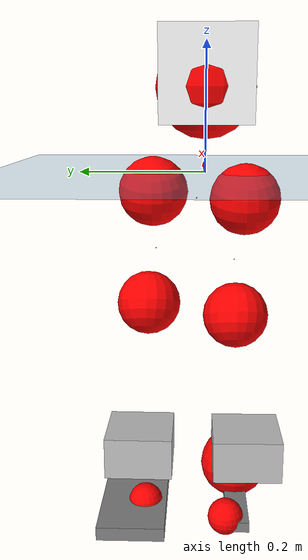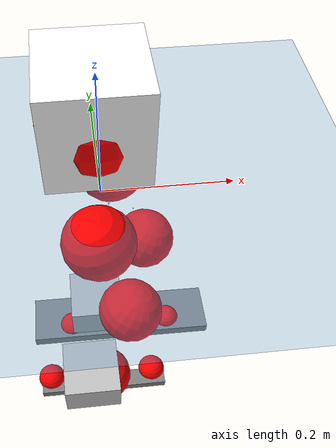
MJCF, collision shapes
<mujoco model="pi_12dof_release_v1">
  <compiler angle="radian" assetdir="assets" balanceinertia="true" inertiafromgeom="false"/>

  <option timestep="0.005" density="1.2" viscosity="2e-05"/>

  <size nkey="1"/>

  <visual>
    <quality shadowsize="8192"/>
    <map shadowclip="0.5"/>
  </visual>

  <default>
    <default class="/">
      <joint armature="0.01" damping="0.01" frictionloss="0.01"/>
      <geom contype="0" conaffinity="0" group="1" solref="-1000 -80"/>
      <site size="0.01 0.005 0.005" group="5"/>
      <general forcelimited="true" biastype="affine" gainprm="20" biasprm="0 -20 -0.5"/>
      <default class="foot">
        <geom size="0.0845 0.036 0.005" type="box" condim="6" group="4" priority="1" friction="0.9 0.2 0.2" solimp="0.015 1 0.005"/>
      </default>
      <default class="reward_collision_sphere">
        <geom group="5" rgba="1 0 0 1"/>
      </default>
    </default>
  </default>

  <asset>
    <texture type="skybox" colorspace="auto" name="//unnamed_texture_0" builtin="gradient" rgb1="0.95 0.95 0.95" rgb2="0.95 0.95 0.95" width="100" height="600"/>
    <texture type="2d" colorspace="auto" name="texplane" builtin="checker" rgb1="0.345 0.575 0.748" rgb2="0.345 0.575 0.748" markrgb="1 1 1" width="512" height="512"/>
    <material name="MatPlane" class="/" texture="texplane" texuniform="true" texrepeat="2 2" specular="0.9"/>
    <mesh name="baselink_1" class="/" file="baselink_1.STL"/>
    <mesh name="r_hip_pitch_link" class="/" file="r_hip_pitch_link.STL"/>
    <mesh name="r_hip_roll_link" class="/" file="r_hip_roll_link.STL"/>
    <mesh name="r_thigh_link" class="/" file="r_thigh_link.STL"/>
    <mesh name="r_calf_link" class="/" file="r_calf_link.STL"/>
    <mesh name="r_ankle_pitch_link" class="/" file="r_ankle_pitch_link.STL"/>
    <mesh name="r_ankle_roll_link" class="/" file="r_ankle_roll_link.STL"/>
    <mesh name="l_hip_pitch_link" class="/" file="l_hip_pitch_link.STL"/>
    <mesh name="l_hip_roll_link" class="/" file="l_hip_roll_link.STL"/>
    <mesh name="l_thigh_link" class="/" file="l_thigh_link.STL"/>
    <mesh name="l_calf_link" class="/" file="l_calf_link.STL"/>
    <mesh name="l_ankle_pitch_link" class="/" file="l_ankle_pitch_link.STL"/>
    <mesh name="l_ankle_roll_link" class="/" file="l_ankle_roll_link.STL"/>
  </asset>

  <worldbody>
    <geom name="floor" class="/" size="100 100 0.125" type="plane" group="0" material="MatPlane"/>
    <light name="toplight_shadow" class="/" pos="0 0 5" dir="0.0990148 0.0990148 -0.990148" type="directional" ambient="0.04 0.04 0.04" diffuse="0.55 0.55 0.55" specular="0.12 0.12 0.12"/>
    <light name="toplight_fill" class="/" pos="0 0 5" dir="0.0990148 0.0990148 -0.990148" type="directional" castshadow="false" ambient="0.04 0.04 0.04" diffuse="0.3 0.3 0.3" specular="0.08 0.08 0.08"/>
    <body name="trunk" pos="-0.00345919 8.86079e-05 0.0119444" quat="0.999998 -0.000994603 -0.00163821 -0.000322904">
      <inertial pos="0.017007 0.0146534 0.0591558" quat="0.721408 0.00608814 0.0166203 0.692284" mass="6.06075" diaginertia="0.0811052 0.00531055 0.0478964"/>
      <joint name="//unnamed_joint_0" type="free"/>
      <geom name="//unnamed_geom_1" class="/" type="mesh" density="0" rgba="1 1 1 1" mesh="baselink_1"/>
      <geom name="//unnamed_geom_2" class="/" size="0.0708399 0.0708399 0.0708399" pos="0 0 0.134628" type="box" rgba="1 1 1 1"/>
      <geom name="//unnamed_geom_3" class="reward_collision_sphere" size="0.0779239" pos="0 0 0.117799"/>
      <site name="imu" class="/" pos="0.0840232 0.0219812 -0.073084" size="0.014168"/>
      <camera name="track" class="/" pos="0 -1.87742 0" quat="0.707107 0.707107 0 0" mode="trackcom"/>
      <camera name="ego_camera" class="/" pos="0.122163 0 0.302913" quat="-0.5 -0.5 0.5 0.5"/>
      <body name="r_hip_pitch_link" pos="-0.0044369 -0.0139394 -0.0536915" quat="0.992572 0.00269548 -0.121605 -0.00226461">
        <inertial pos="-0.013396 -0.0423778 0.00242522" quat="-0.0354399 0.729502 -0.0641077 0.680045" mass="1.28784" diaginertia="0.00152961 7.4734e-05 0.00104837"/>
        <joint name="r_hip_pitch_joint" class="/" pos="0 0 0" axis="0.0842236 -0.996296 0.0173504" range="-1.74225 1.56237" armature="0.0207935" damping="0.09947" frictionloss="0.0195485"/>
        <geom name="//unnamed_geom_4" class="/" type="mesh" density="0" rgba="0.75294 0.75294 0.75294 1" mesh="r_hip_pitch_link"/>
        <geom name="//unnamed_geom_5" class="/" size="0.000708399 0.000708399 0.000708399" type="box" rgba="0.75294 0.75294 0.75294 1"/>
        <body name="r_hip_roll_link" pos="-0.000478367 -0.050103 0.000260701" quat="0.999999 0.000193613 -0.00157133 8.23397e-05">
          <inertial pos="-0.0114361 -0.00110325 -0.117496" quat="0.709811 -0.110782 -0.0787425 0.691155" mass="0.919219" diaginertia="0.00439126 0.000195977 0.0017747"/>
          <joint name="r_hip_roll_joint" class="/" pos="0 0 0" axis="-0.996555 -0.082694 0.00638167" stiffness="0.0284305" range="0.179685 0.34038" armature="0.0205655" damping="0" frictionloss="0.00532036"/>
          <geom name="//unnamed_geom_6" class="/" type="mesh" density="0" rgba="0.75294 0.75294 0.75294 1" mesh="r_hip_roll_link"/>
          <geom name="//unnamed_geom_7" class="/" size="0.000708399 0.000708399 0.000708399" type="box" rgba="0.75294 0.75294 0.75294 1"/>
          <geom name="//unnamed_geom_8" class="reward_collision_sphere" size="0.0566719"/>
          <body name="r_thigh_link" pos="-0.0138905 0.0138796 -0.0997453" quat="0.999977 -0.00373463 0.000698228 0.00555826">
            <inertial pos="0.00601245 0.000292169 -0.073844" quat="0.728179 0.684779 -0.0154137 0.0244138" mass="0.371614" diaginertia="0.00162692 6.86328e-05 0.000943037"/>
            <joint name="r_thigh_joint" class="/" pos="0 0 0" axis="0.0472121 0.0306786 -0.998414" range="-0.455298 0.441991" armature="0.0167431" damping="0.00290623" frictionloss="0.0107572"/>
            <geom name="//unnamed_geom_9" class="/" type="mesh" density="0" rgba="0.75294 0.75294 0.75294 1" mesh="r_thigh_link"/>
            <geom name="//unnamed_geom_10" class="/" size="0.000708399 0.000708399 0.000708399" type="box" rgba="0.75294 0.75294 0.75294 1"/>
            <body name="r_calf_link" pos="0.0113288 -0.00638465 -0.114848" quat="0.947768 -0.000589313 0.318959 6.61856e-05">
              <inertial pos="-0.0149091 0.00271474 -0.120515" quat="0.999937 -0.00544154 -0.00570934 0.00793978" mass="2.15006" diaginertia="0.0386518 0.00191421 0.00203854"/>
              <joint name="r_calf_joint" class="/" pos="0 0 0" axis="0.0527613 -0.998322 -0.0238461" stiffness="0.0112932" range="-1.5894 0.445499" armature="0.0223928" damping="0" frictionloss="0.0208713"/>
              <geom name="//unnamed_geom_11" class="/" type="mesh" density="0" rgba="0.75294 0.75294 0.75294 1" mesh="r_calf_link"/>
              <geom name="//unnamed_geom_12" class="/" size="0.000708399 0.000708399 0.000708399" type="box" rgba="0.75294 0.75294 0.75294 1"/>
              <geom name="//unnamed_geom_13" class="reward_collision_sphere" size="0.0566719"/>
              <body name="r_ankle_pitch_link" pos="0.00883148 -0.0155096 -0.22602" quat="0.980017 0.000653715 -0.198896 -0.00251276">
                <inertial pos="0.00713124 -0.0013242 0.00337232" quat="0.0476384 0.73588 0.0318188 0.674684" mass="0.694881" diaginertia="0.00391375 0.000161452 0.00166239"/>
                <joint name="r_ankle_pitch_joint" class="/" pos="0 0 0" axis="-0.0301102 -0.999539 -0.00385893" stiffness="0.060672" range="-1.17567 0.395663" armature="0.0181662" damping="0.0869817" frictionloss="0.013994"/>
                <geom name="//unnamed_geom_14" class="/" type="mesh" density="0" rgba="0.75294 0.75294 0.75294 1" mesh="r_ankle_pitch_link"/>
                <geom name="//unnamed_geom_15" class="/" size="0.0552551 0.0566719 0.03542" type="box" rgba="0.75294 0.75294 0.75294 1"/>
                <body name="r_ankle_roll_link" pos="0.107963 0.0181371 -0.00834281" quat="0.999999 -0.000812556 0.000191336 -0.00135261">
                  <inertial pos="-0.03806 0.0028819 -0.0398096" quat="0.565994 0.416874 0.474869 0.529496" mass="1.55759" diaginertia="0.0156219 0.000875683 0.00368614"/>
                  <joint name="r_ankle_roll_joint" class="/" pos="0 0 0" axis="-0.999935 0.00807517 -0.0080321" range="0.0802926 -0.013012" armature="0.00928568" damping="0.0889102" frictionloss="0.0040782"/>
                  <geom name="//unnamed_geom_16" class="/" type="mesh" density="0" rgba="0.75294 0.75294 0.75294 1" mesh="r_ankle_roll_link"/>
                  <geom name="//unnamed_geom_17" class="/" type="mesh" rgba="0.75294 0.75294 0.75294 1" mesh="r_ankle_roll_link"/>
                  <geom name="right_foot" class="foot" size="0.133289 0.0180956 0.00844095" pos="-0.0830707 0 -0.0740454"/>
                  <geom name="//unnamed_geom_19" class="reward_collision_sphere" size="0.0566719" pos="-0.0814419 0 -0.033657"/>
                  <geom name="//unnamed_geom_20" class="reward_collision_sphere" size="0.028336" pos="0.0244326 0.0187742 -0.067314"/>
                  <geom name="//unnamed_geom_21" class="reward_collision_sphere" size="0.028336" pos="-0.19546 0.0187742 -0.067314"/>
                  <site name="right_foot" class="foot" pos="-0.0830707 0 -0.0740454" size="0.014168"/>
                </body>
              </body>
            </body>
          </body>
        </body>
      </body>
      <body name="l_hip_pitch_link" pos="0.0164427 0.0131498 -0.0543961" quat="0.992078 0.00321747 -0.12558 0.000404826">
        <inertial pos="-0.00759196 0.035957 -0.00311978" quat="-0.0843297 0.723457 0.0222319 0.684838" mass="1.09708" diaginertia="0.00189475 7.17191e-05 0.00189067"/>
        <joint name="l_hip_pitch_joint" class="/" pos="0 0 0" axis="-0.0628892 0.997984 -0.00859396" stiffness="0.0339525" range="-0.948747 1.65503" armature="0.00285378" damping="0.0826723" frictionloss="0.0178019"/>
        <geom name="//unnamed_geom_22" class="/" type="mesh" density="0" rgba="0.75294 0.75294 0.75294 1" mesh="l_hip_pitch_link"/>
        <geom name="//unnamed_geom_23" class="/" size="0.000708399 0.000708399 0.000708399" type="box" rgba="0.75294 0.75294 0.75294 1"/>
        <body name="l_hip_roll_link" pos="0.0112608 0.0708218 0.00623223" quat="1 -0.000132002 0.000324096 -0.000423766">
          <inertial pos="-0.00222441 -0.0132584 -0.0976416" quat="0.694349 -0.061708 -0.08323 0.712141" mass="1.11749" diaginertia="0.00383436 0.000231625 0.00159677"/>
          <joint name="l_hip_roll_joint" class="/" pos="0 0 0" axis="-0.996597 -0.0705688 -0.0425987" range="-0.832167 -0.110602" armature="0.0109467" damping="0.0409275" frictionloss="0.0245154"/>
          <geom name="//unnamed_geom_24" class="/" type="mesh" density="0" rgba="0.75294 0.75294 0.75294 1" mesh="l_hip_roll_link"/>
          <geom name="//unnamed_geom_25" class="/" size="0.000708399 0.000708399 0.000708399" type="box" rgba="0.75294 0.75294 0.75294 1"/>
          <geom name="//unnamed_geom_26" class="reward_collision_sphere" size="0.0566719"/>
          <body name="l_thigh_link" pos="0.0113907 -0.00235484 -0.108506" quat="0.999991 -0.00332831 -0.00246769 -0.000231114">
            <inertial pos="0.0010553 -9.58979e-05 -0.0781254" quat="0.613916 0.788469 -0.0375891 0.00310197" mass="0.318277" diaginertia="0.00136564 6.48059e-05 0.000937177"/>
            <joint name="l_thigh_joint" class="/" pos="0 0 0" axis="0.0360915 -0.0182714 -0.999181" stiffness="0.00937447" range="-0.387025 0.07615" armature="0.0077548" damping="0.0745876" frictionloss="0.00627349"/>
            <geom name="//unnamed_geom_27" class="/" type="mesh" density="0" rgba="0.75294 0.75294 0.75294 1" mesh="l_thigh_link"/>
            <geom name="//unnamed_geom_28" class="/" size="0.000708399 0.000708399 0.000708399" type="box" rgba="0.75294 0.75294 0.75294 1"/>
            <body name="l_calf_link" pos="-0.00263849 0.0151953 -0.109278" quat="0.945774 0.00223105 0.324813 -0.00183131">
              <inertial pos="0.0158304 0.00520105 -0.131579" quat="0.999309 -0.00155401 -0.0057757 0.0366839" mass="2.58205" diaginertia="0.0447143 0.00286461 0.00317285"/>
              <joint name="l_calf_joint" class="/" pos="0 0 0" axis="0.0319058 0.999229 0.0228857" stiffness="0.0364439" range="-0.809482 2.00633" armature="0.0238158" damping="0.014365" frictionloss="0.0246093"/>
              <geom name="//unnamed_geom_29" class="/" type="mesh" density="0" rgba="0.75294 0.75294 0.75294 1" mesh="l_calf_link"/>
              <geom name="//unnamed_geom_30" class="/" size="0.000708399 0.000708399 0.000708399" type="box" rgba="0.75294 0.75294 0.75294 1"/>
              <geom name="//unnamed_geom_31" class="reward_collision_sphere" size="0.0566719"/>
              <body name="l_ankle_pitch_link" pos="-0.00283444 0.00937147 -0.250942" quat="0.980335 2.87127e-05 -0.197337 -0.000958365">
                <inertial pos="-0.00452193 0.00503036 -0.00510378" quat="-0.00218433 0.707107 0.00102923 0.707103" mass="0.733356" diaginertia="0.00505153 0.000191308 0.00182752"/>
                <joint name="l_ankle_pitch_joint" class="/" pos="0 0 0" axis="-0.0580822 0.997868 0.0297721" stiffness="0.00944585" range="-0.527739 1.37447" armature="0.013059" damping="0.078204" frictionloss="0.00154684"/>
                <geom name="//unnamed_geom_32" class="/" type="mesh" density="0" rgba="0.75294 0.75294 0.75294 1" mesh="l_ankle_pitch_link"/>
                <geom name="//unnamed_geom_33" class="/" size="0.0552551 0.0566719 0.03542" type="box" rgba="0.75294 0.75294 0.75294 1"/>
                <body name="l_ankle_roll_link" pos="0.137574 0.0057294 -0.00492659" quat="0.999989 -0.00406459 -0.00220111 -0.000937747">
                  <inertial pos="-0.0306124 -0.00133471 -0.0271715" quat="0.52109 0.397654 0.460033 0.598921" mass="1.34472" diaginertia="0.0140536 0.00059786 0.00356249"/>
                  <joint name="l_ankle_roll_joint" class="/" pos="0 0 0" axis="-0.999894 -0.00677143 -0.0128978" range="-0.153088 0.162392" armature="0.0192971" damping="0" frictionloss="0.025622"/>
                  <geom name="//unnamed_geom_34" class="/" type="mesh" density="0" rgba="0.75294 0.75294 0.75294 1" mesh="l_ankle_roll_link"/>
                  <geom name="//unnamed_geom_35" class="/" type="mesh" rgba="0.75294 0.75294 0.75294 1" mesh="l_ankle_roll_link"/>
                  <geom name="left_foot" class="foot" size="0.20024 0.0539543 0.0111544" pos="-0.0830707 0 -0.0740454"/>
                  <geom name="//unnamed_geom_37" class="reward_collision_sphere" size="0.0566719" pos="-0.0814419 0 -0.033657"/>
                  <geom name="//unnamed_geom_38" class="reward_collision_sphere" size="0.028336" pos="0.0244326 -0.0187742 -0.067314"/>
                  <geom name="//unnamed_geom_39" class="reward_collision_sphere" size="0.028336" pos="-0.19546 -0.0187742 -0.067314"/>
                  <site name="left_foot" class="foot" pos="-0.0830707 0 -0.0740454" size="0.014168"/>
                </body>
              </body>
            </body>
          </body>
        </body>
      </body>
    </body>
  </worldbody>

  <contact>
    <pair class="/" geom1="floor" geom2="right_foot" name="//unnamed_contact_1"/>
    <pair class="/" geom1="floor" geom2="left_foot" name="//unnamed_contact_0"/>
  </contact>

  <actuator>
    <general name="r_hip_pitch_joint" class="/" joint="r_hip_pitch_joint" forcerange="-21.16 21.16" gainprm="31.6481" biasprm="0 -31.6481 -0.452224"/>
    <general name="r_hip_roll_joint" class="/" joint="r_hip_roll_joint" forcerange="-45.2284 45.2284" gainprm="31.6481" biasprm="0 -31.6481 -0.452224"/>
    <general name="r_thigh_joint" class="/" joint="r_thigh_joint" forcerange="-15.656 15.656" gainprm="31.6481" biasprm="0 -31.6481 -0.452224"/>
    <general name="r_calf_joint" class="/" joint="r_calf_joint" forcerange="-31.4572 31.4572" gainprm="31.6481" biasprm="0 -31.6481 -0.452224"/>
    <general name="r_ankle_pitch_joint" class="/" joint="r_ankle_pitch_joint" forcerange="-44.9196 44.9196" gainprm="31.6481" biasprm="0 -31.6481 -0.452224"/>
    <general name="r_ankle_roll_joint" class="/" joint="r_ankle_roll_joint" forcerange="-29.3153 29.3153" gainprm="31.6481" biasprm="0 -31.6481 -0.452224"/>
    <general name="l_hip_pitch_joint" class="/" joint="l_hip_pitch_joint" forcerange="-35.1558 35.1558" gainprm="31.6481" biasprm="0 -31.6481 -0.452224"/>
    <general name="l_hip_roll_joint" class="/" joint="l_hip_roll_joint" forcerange="-41.3769 41.3769" gainprm="31.6481" biasprm="0 -31.6481 -0.452224"/>
    <general name="l_thigh_joint" class="/" joint="l_thigh_joint" forcerange="-36.7642 36.7642" gainprm="31.6481" biasprm="0 -31.6481 -0.452224"/>
    <general name="l_calf_joint" class="/" joint="l_calf_joint" forcerange="-42.0251 42.0251" gainprm="31.6481" biasprm="0 -31.6481 -0.452224"/>
    <general name="l_ankle_pitch_joint" class="/" joint="l_ankle_pitch_joint" forcerange="-19.6556 19.6556" gainprm="31.6481" biasprm="0 -31.6481 -0.452224"/>
    <general name="l_ankle_roll_joint" class="/" joint="l_ankle_roll_joint" forcerange="-45.8319 45.8319" gainprm="31.6481" biasprm="0 -31.6481 -0.452224"/>
  </actuator>

  <sensor>
    <gyro site="imu" name="imu_angular_velocity"/>
    <velocimeter site="imu" name="imu_linear_velocity"/>
    <framelinvel objtype="site" objname="left_foot" name="left_foot_global_linear_velocity"/>
    <framelinvel objtype="site" objname="right_foot" name="right_foot_global_linear_velocity"/>
  </sensor>

  <keyframe>
    <key name="home" qpos="0 0 0.291 1 0 0 0 0.4 0 0 -0.8 0.4 0 -0.4 0 0 0.8 -0.4 0"/>
  </keyframe>
</mujoco>
